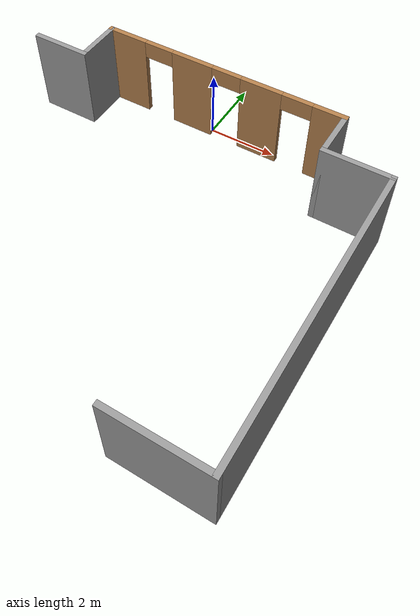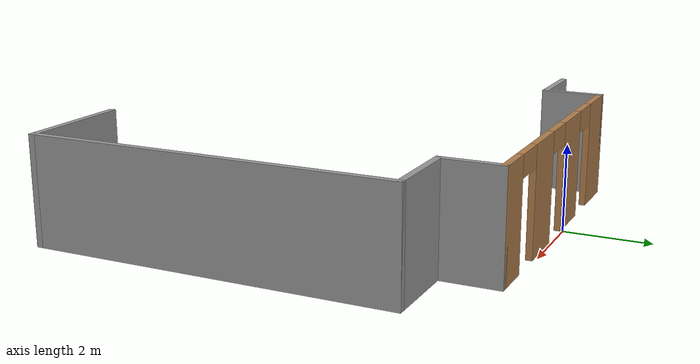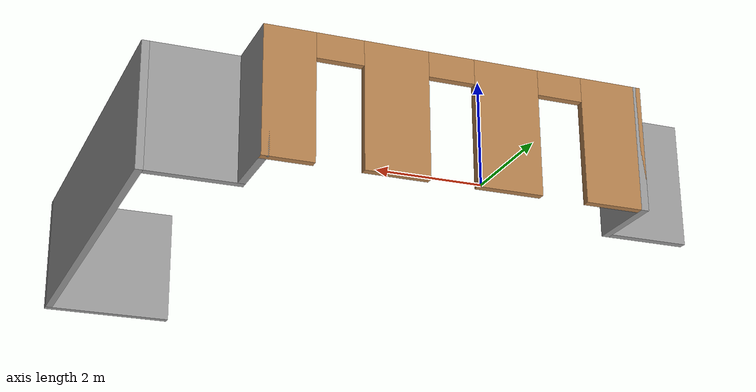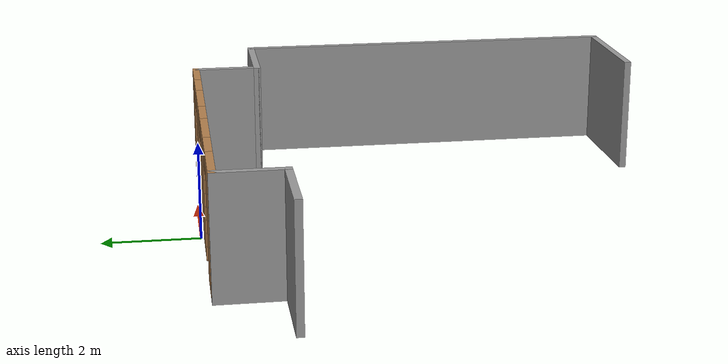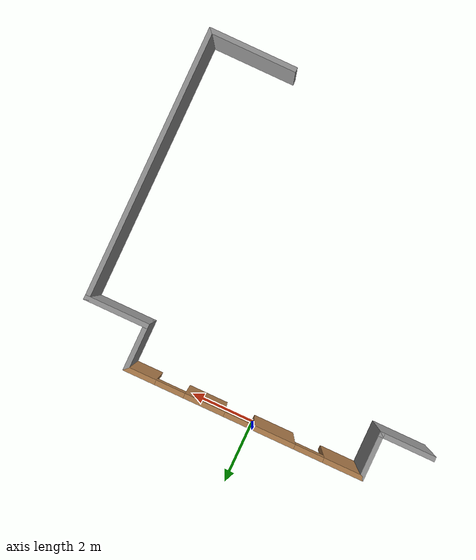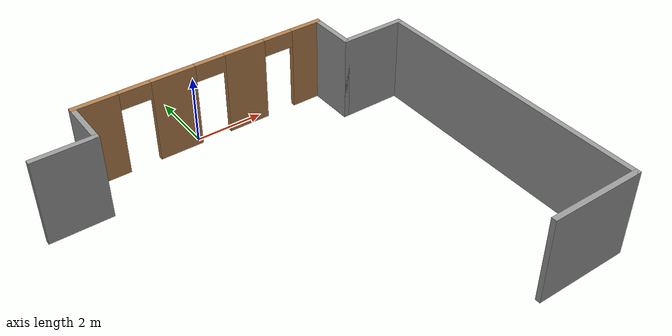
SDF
<?xml version='1.0'?>
<sdf version='1.7'>
  <model name='3_doors'>
    <pose>0.44 -4.9525 0 0 -0 0</pose>
    <link name='Wall_0'>
      <collision name='Wall_0_Collision'>
        <geometry>
          <box>
            <size>1.5 0.15 2.5</size>
          </box>
        </geometry>
        <pose>0 0 1.25 0 -0 0</pose>
      </collision>
      <visual name='Wall_0_Visual'>
        <pose>0 0 1.25 0 -0 0</pose>
        <geometry>
          <box>
            <size>1.5 0.15 2.5</size>
          </box>
        </geometry>
        <material>
          <script>
            <uri>file://media/materials/scripts/gazebo.material</uri>
            <name>Gazebo/Grey</name>
          </script>
          <ambient>1 1 1 1</ambient>
        </material>
        <meta>
          <layer>0</layer>
        </meta>
      </visual>
      <pose>-3.8 4.1475 0 0 -0 1.5708</pose>
    </link>
    <link name='Wall_1'>
      <pose>-0.125 4.8225 0 0 -0 0</pose>
      <visual name='Wall_1_Visual_0'>
        <pose>-3.1125 0 1.25 0 -0 0</pose>
        <geometry>
          <box>
            <size>1.275 0.15 2.5</size>
          </box>
        </geometry>
        <material>
          <script>
            <uri>file://media/materials/scripts/gazebo.material</uri>
            <name>Gazebo/Wood</name>
          </script>
          <ambient>0.729412 0.741176 0.713726 1</ambient>
        </material>
        <meta>
          <layer>0</layer>
        </meta>
      </visual>
      <collision name='Wall_1_Collision_0'>
        <geometry>
          <box>
            <size>1.275 0.15 2.5</size>
          </box>
        </geometry>
        <pose>-3.1125 0 1.25 0 -0 0</pose>
      </collision>
      <visual name='Wall_1_Visual_1'>
        <pose>-0.93 0 1.25 0 -0 0</pose>
        <geometry>
          <box>
            <size>1.29 0.15 2.5</size>
          </box>
        </geometry>
        <material>
          <script>
            <uri>file://media/materials/scripts/gazebo.material</uri>
            <name>Gazebo/Wood</name>
          </script>
          <ambient>0.729412 0.741176 0.713726 1</ambient>
        </material>
        <meta>
          <layer>0</layer>
        </meta>
      </visual>
      <collision name='Wall_1_Collision_1'>
        <geometry>
          <box>
            <size>1.29 0.15 2.5</size>
          </box>
        </geometry>
        <pose>-0.93 0 1.25 0 -0 0</pose>
      </collision>
      <visual name='Wall_1_Visual_2'>
        <pose>1.24 0 1.25 0 -0 0</pose>
        <geometry>
          <box>
            <size>1.25 0.15 2.5</size>
          </box>
        </geometry>
        <material>
          <script>
            <uri>file://media/materials/scripts/gazebo.material</uri>
            <name>Gazebo/Wood</name>
          </script>
          <ambient>0.729412 0.741176 0.713726 1</ambient>
        </material>
        <meta>
          <layer>0</layer>
        </meta>
      </visual>
      <collision name='Wall_1_Collision_2'>
        <geometry>
          <box>
            <size>1.25 0.15 2.5</size>
          </box>
        </geometry>
        <pose>1.24 0 1.25 0 -0 0</pose>
      </collision>
      <visual name='Wall_1_Visual_3'>
        <pose>3.2575 0 1.25 0 -0 0</pose>
        <geometry>
          <box>
            <size>0.985 0.15 2.5</size>
          </box>
        </geometry>
        <material>
          <script>
            <uri>file://media/materials/scripts/gazebo.material</uri>
            <name>Gazebo/Wood</name>
          </script>
          <ambient>0.729412 0.741176 0.713726 1</ambient>
        </material>
        <meta>
          <layer>0</layer>
        </meta>
      </visual>
      <collision name='Wall_1_Collision_3'>
        <geometry>
          <box>
            <size>0.985 0.15 2.5</size>
          </box>
        </geometry>
        <pose>3.2575 0 1.25 0 -0 0</pose>
      </collision>
      <visual name='Wall_1_Visual_4'>
        <pose>-2.025 0 2.25 0 -0 0</pose>
        <geometry>
          <box>
            <size>0.9 0.15 0.5</size>
          </box>
        </geometry>
        <material>
          <script>
            <uri>file://media/materials/scripts/gazebo.material</uri>
            <name>Gazebo/Wood</name>
          </script>
          <ambient>0.729412 0.741176 0.713726 1</ambient>
        </material>
        <meta>
          <layer>0</layer>
        </meta>
      </visual>
      <collision name='Wall_1_Collision_4'>
        <geometry>
          <box>
            <size>0.9 0.15 0.5</size>
          </box>
        </geometry>
        <pose>-2.025 0 2.25 0 -0 0</pose>
      </collision>
      <visual name='Wall_1_Visual_5'>
        <pose>0.165 0 2.25 0 -0 0</pose>
        <geometry>
          <box>
            <size>0.9 0.15 0.5</size>
          </box>
        </geometry>
        <material>
          <script>
            <uri>file://media/materials/scripts/gazebo.material</uri>
            <name>Gazebo/Wood</name>
          </script>
          <ambient>0.729412 0.741176 0.713726 1</ambient>
        </material>
        <meta>
          <layer>0</layer>
        </meta>
      </visual>
      <collision name='Wall_1_Collision_5'>
        <geometry>
          <box>
            <size>0.9 0.15 0.5</size>
          </box>
        </geometry>
        <pose>0.165 0 2.25 0 -0 0</pose>
      </collision>
      <visual name='Wall_1_Visual_6'>
        <pose>2.315 0 2.25 0 -0 0</pose>
        <geometry>
          <box>
            <size>0.9 0.15 0.5</size>
          </box>
        </geometry>
        <material>
          <script>
            <uri>file://media/materials/scripts/gazebo.material</uri>
            <name>Gazebo/Wood</name>
          </script>
          <ambient>0.729412 0.741176 0.713726 1</ambient>
        </material>
        <meta>
          <layer>0</layer>
        </meta>
      </visual>
      <collision name='Wall_1_Collision_6'>
        <geometry>
          <box>
            <size>0.9 0.15 0.5</size>
          </box>
        </geometry>
        <pose>2.315 0 2.25 0 -0 0</pose>
      </collision>
    </link>
    <link name='Wall_10'>
      <collision name='Wall_10_Collision'>
        <geometry>
          <box>
            <size>8.5 0.15 2.5</size>
          </box>
        </geometry>
        <pose>0 0 1.25 0 -0 0</pose>
      </collision>
      <visual name='Wall_10_Visual'>
        <pose>0 0 1.25 0 -0 0</pose>
        <geometry>
          <box>
            <size>8.5 0.15 2.5</size>
          </box>
        </geometry>
        <material>
          <script>
            <uri>file://media/materials/scripts/gazebo.material</uri>
            <name>Gazebo/Grey</name>
          </script>
          <ambient>0.729412 0.741176 0.713726 1</ambient>
        </material>
        <meta>
          <layer>0</layer>
        </meta>
      </visual>
      <pose>5.4 -0.7025 0 0 -0 -1.5708</pose>
    </link>
    <link name='Wall_11'>
      <collision name='Wall_11_Collision'>
        <geometry>
          <box>
            <size>2.75 0.15 2.5</size>
          </box>
        </geometry>
        <pose>0 0 1.25 0 -0 0</pose>
      </collision>
      <visual name='Wall_11_Visual'>
        <pose>0 0 1.25 0 -0 0</pose>
        <geometry>
          <box>
            <size>2.75 0.15 2.5</size>
          </box>
        </geometry>
        <material>
          <script>
            <uri>file://media/materials/scripts/gazebo.material</uri>
            <name>Gazebo/Grey</name>
          </script>
          <ambient>0.180392 0.203922 0.211765 1</ambient>
        </material>
        <meta>
          <layer>0</layer>
        </meta>
      </visual>
      <pose>4.1 -4.8775 0 0 -0 3.14159</pose>
    </link>
    <link name='Wall_2'>
      <collision name='Wall_2_Collision'>
        <geometry>
          <box>
            <size>1.5 0.15 2.5</size>
          </box>
        </geometry>
        <pose>0 0 1.25 0 -0 0</pose>
      </collision>
      <visual name='Wall_2_Visual'>
        <pose>0 0 1.25 0 -0 0</pose>
        <geometry>
          <box>
            <size>1.5 0.15 2.5</size>
          </box>
        </geometry>
        <material>
          <script>
            <uri>file://media/materials/scripts/gazebo.material</uri>
            <name>Gazebo/Grey</name>
          </script>
          <ambient>1 1 1 1</ambient>
        </material>
        <meta>
          <layer>0</layer>
        </meta>
      </visual>
      <pose>3.55 4.1475 0 0 -0 -1.5708</pose>
    </link>
    <link name='Wall_5'>
      <collision name='Wall_5_Collision'>
        <geometry>
          <box>
            <size>1.75 0.15 2.5</size>
          </box>
        </geometry>
        <pose>0 0 1.25 0 -0 0</pose>
      </collision>
      <visual name='Wall_5_Visual'>
        <pose>0 0 1.25 0 -0 0</pose>
        <geometry>
          <box>
            <size>1.75 0.15 2.5</size>
          </box>
        </geometry>
        <material>
          <script>
            <uri>file://media/materials/scripts/gazebo.material</uri>
            <name>Gazebo/Grey</name>
          </script>
          <ambient>0.180392 0.203922 0.211765 1</ambient>
        </material>
        <meta>
          <layer>0</layer>
        </meta>
      </visual>
      <pose>-4.6 3.4725 0 0 -0 3.14159</pose>
    </link>
    <link name='Wall_9'>
      <collision name='Wall_9_Collision'>
        <geometry>
          <box>
            <size>2 0.15 2.5</size>
          </box>
        </geometry>
        <pose>0 0 1.25 0 -0 0</pose>
      </collision>
      <visual name='Wall_9_Visual'>
        <pose>0 0 1.25 0 -0 0</pose>
        <geometry>
          <box>
            <size>2 0.15 2.5</size>
          </box>
        </geometry>
        <material>
          <script>
            <uri>file://media/materials/scripts/gazebo.material</uri>
            <name>Gazebo/Grey</name>
          </script>
          <ambient>0.180392 0.203922 0.211765 1</ambient>
        </material>
        <meta>
          <layer>0</layer>
        </meta>
      </visual>
      <pose>4.475 3.4725 0 0 -0 0</pose>
    </link>
    <static>1</static>
  </model>
</sdf>
